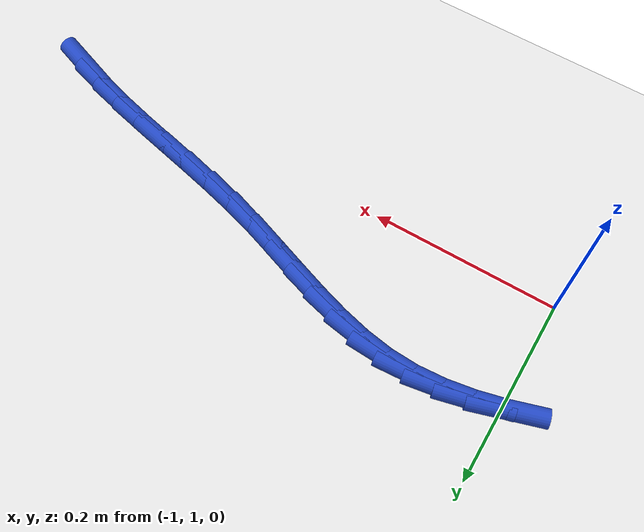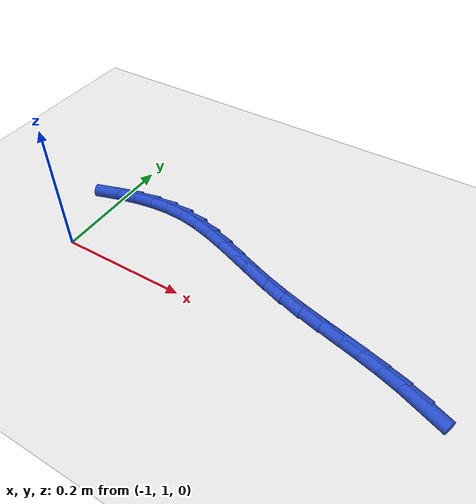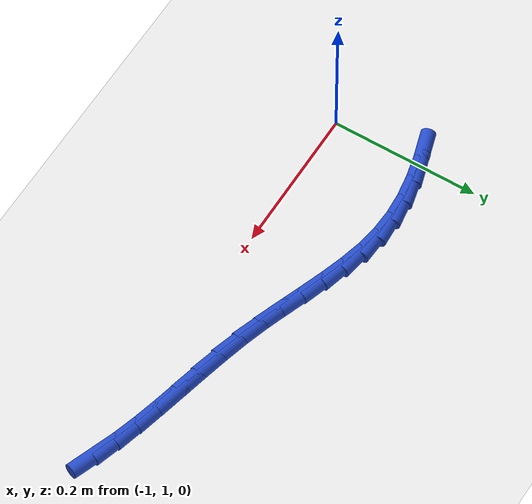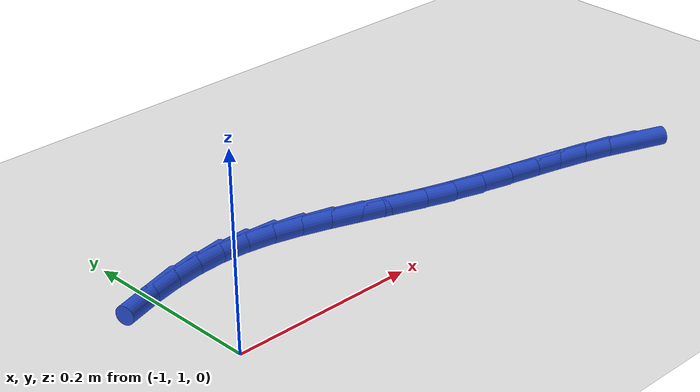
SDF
<sdf version="1.6">
 <world name="default">
  <model name="ground_plane">
   <static>1</static>
   <link name="link">
    <collision name="collision">
     <geometry><plane><normal>0 0 1</normal><size>100 100</size></plane></geometry>
     <surface><friction><ode><mu>100</mu><mu2>50</mu2></ode></friction></surface>
    </collision>
    <visual name="visual">
     <cast_shadows>0</cast_shadows>
     <geometry><plane><normal>0 0 1</normal><size>100 100</size></plane></geometry>
     <material>
      <script><uri>file://media/materials/scripts/gazebo.material</uri><name>Gazebo/WhiteGlow</name></script>
     </material>
    </visual>
   </link>
  </model>
  <model name="line">
   <link name="link_36">
    <pose>-0.4443935476967348 1.0065991091137647 0.01 0 1.57 -0.35108244564889207</pose>
    <collision name="collision">
     <geometry><cylinder><radius>0.01</radius><length>0.08</length></cylinder></geometry>
    </collision>
    <visual name="visual">
     <material>
      <script><name>Gazebo/Blue</name><uri>file://media/materials/scripts/gazebo.material</uri></script>
     </material>
     <geometry><cylinder><radius>0.01</radius><length>0.08</length></cylinder></geometry>
    </visual>
   </link>
   <link name="link_37">
    <pose>-0.47354317729272516 1.0172753258579377 0.01 0 1.57 -0.293710655829187</pose>
    <collision name="collision">
     <geometry><cylinder><radius>0.01</radius><length>0.08</length></cylinder></geometry>
    </collision>
    <visual name="visual">
     <material>
      <script><name>Gazebo/Blue</name><uri>file://media/materials/scripts/gazebo.material</uri></script>
     </material>
     <geometry><cylinder><radius>0.01</radius><length>0.08</length></cylinder></geometry>
    </visual>
   </link>
   <link name="link_38">
    <pose>-0.504290602658472 1.026575142178314 0.01 0 1.57 -0.2555441786680853</pose>
    <collision name="collision">
     <geometry><cylinder><radius>0.01</radius><length>0.08</length></cylinder></geometry>
    </collision>
    <visual name="visual">
     <material>
      <script><name>Gazebo/Blue</name><uri>file://media/materials/scripts/gazebo.material</uri></script>
     </material>
     <geometry><cylinder><radius>0.01</radius><length>0.08</length></cylinder></geometry>
    </visual>
   </link>
   <link name="link_39">
    <pose>-0.5362494569103372 1.0349245849400102 0.01 0 1.57 -0.23430316299109025</pose>
    <collision name="collision">
     <geometry><cylinder><radius>0.01</radius><length>0.08</length></cylinder></geometry>
    </collision>
    <visual name="visual">
     <material>
      <script><name>Gazebo/Blue</name><uri>file://media/materials/scripts/gazebo.material</uri></script>
     </material>
     <geometry><cylinder><radius>0.01</radius><length>0.08</length></cylinder></geometry>
    </visual>
   </link>
   <link name="link_40">
    <pose>-0.569033373164683 1.0427496810081427 0.01 0 1.57 -0.22851341701971878</pose>
    <collision name="collision">
     <geometry><cylinder><radius>0.01</radius><length>0.08</length></cylinder></geometry>
    </collision>
    <visual name="visual">
     <material>
      <script><name>Gazebo/Blue</name><uri>file://media/materials/scripts/gazebo.material</uri></script>
     </material>
     <geometry><cylinder><radius>0.01</radius><length>0.08</length></cylinder></geometry>
    </visual>
   </link>
   <link name="link_41">
    <pose>-0.6022559845378709 1.0504764572478278 0.01 0 1.57 -0.23749049462618627</pose>
    <collision name="collision">
     <geometry><cylinder><radius>0.01</radius><length>0.08</length></cylinder></geometry>
    </collision>
    <visual name="visual">
     <material>
      <script><name>Gazebo/Blue</name><uri>file://media/materials/scripts/gazebo.material</uri></script>
     </material>
     <geometry><cylinder><radius>0.01</radius><length>0.08</length></cylinder></geometry>
    </visual>
   </link>
   <link name="link_42">
    <pose>-0.6355309241462634 1.0585309405241823 0.01 0 1.57 -0.2612818216790445</pose>
    <collision name="collision">
     <geometry><cylinder><radius>0.01</radius><length>0.08</length></cylinder></geometry>
    </collision>
    <visual name="visual">
     <material>
      <script><name>Gazebo/Blue</name><uri>file://media/materials/scripts/gazebo.material</uri></script>
     </material>
     <geometry><cylinder><radius>0.01</radius><length>0.08</length></cylinder></geometry>
    </visual>
   </link>
   <link name="link_43">
    <pose>-0.6684718251062219 1.0673391577023223 0.01 0 1.57 -0.29998683237778345</pose>
    <collision name="collision">
     <geometry><cylinder><radius>0.01</radius><length>0.08</length></cylinder></geometry>
    </collision>
    <visual name="visual">
     <material>
      <script><name>Gazebo/Blue</name><uri>file://media/materials/scripts/gazebo.material</uri></script>
     </material>
     <geometry><cylinder><radius>0.01</radius><length>0.08</length></cylinder></geometry>
    </visual>
   </link>
   <link name="link_44">
    <pose>-0.7007013021845167 1.0773084382759213 0.01 0 1.57 -0.3371212285265319</pose>
    <collision name="collision">
     <geometry><cylinder><radius>0.01</radius><length>0.08</length></cylinder></geometry>
    </collision>
    <visual name="visual">
     <material>
      <script><name>Gazebo/Blue</name><uri>file://media/materials/scripts/gazebo.material</uri></script>
     </material>
     <geometry><cylinder><radius>0.01</radius><length>0.08</length></cylinder></geometry>
    </visual>
   </link>
   <link name="link_45">
    <pose>-0.7320980448267572 1.0883130333877695 0.01 0 1.57 -0.3528521597925134</pose>
    <collision name="collision">
     <geometry><cylinder><radius>0.01</radius><length>0.08</length></cylinder></geometry>
    </collision>
    <visual name="visual">
     <material>
      <script><name>Gazebo/Blue</name><uri>file://media/materials/scripts/gazebo.material</uri></script>
     </material>
     <geometry><cylinder><radius>0.01</radius><length>0.08</length></cylinder></geometry>
    </visual>
   </link>
   <link name="link_46">
    <pose>-0.7628277672682247 1.0996296860543815 0.01 0 1.57 -0.3451491324614072</pose>
    <collision name="collision">
     <geometry><cylinder><radius>0.01</radius><length>0.08</length></cylinder></geometry>
    </collision>
    <visual name="visual">
     <material>
      <script><name>Gazebo/Blue</name><uri>file://media/materials/scripts/gazebo.material</uri></script>
     </material>
     <geometry><cylinder><radius>0.01</radius><length>0.08</length></cylinder></geometry>
    </visual>
   </link>
   <link name="link_47">
    <pose>-0.7930713806897643 1.110503503354208 0.01 0 1.57 -0.3126027913945446</pose>
    <collision name="collision">
     <geometry><cylinder><radius>0.01</radius><length>0.08</length></cylinder></geometry>
    </collision>
    <visual name="visual">
     <material>
      <script><name>Gazebo/Blue</name><uri>file://media/materials/scripts/gazebo.material</uri></script>
     </material>
     <geometry><cylinder><radius>0.01</radius><length>0.08</length></cylinder></geometry>
    </visual>
   </link>
   <link name="link_48">
    <pose>-0.8230097962722206 1.1201795923657007 0.01 0 1.57 -0.2534817061256791</pose>
    <collision name="collision">
     <geometry><cylinder><radius>0.01</radius><length>0.08</length></cylinder></geometry>
    </collision>
    <visual name="visual">
     <material>
      <script><name>Gazebo/Blue</name><uri>file://media/materials/scripts/gazebo.material</uri></script>
     </material>
     <geometry><cylinder><radius>0.01</radius><length>0.08</length></cylinder></geometry>
    </visual>
   </link>
   <link name="link_49">
    <pose>-0.8528239251964391 1.1279030601673097 0.01 0 1.57 -0.16636973626836798</pose>
    <collision name="collision">
     <geometry><cylinder><radius>0.01</radius><length>0.08</length></cylinder></geometry>
    </collision>
    <visual name="visual">
     <material>
      <script><name>Gazebo/Blue</name><uri>file://media/materials/scripts/gazebo.material</uri></script>
     </material>
     <geometry><cylinder><radius>0.01</radius><length>0.08</length></cylinder></geometry>
    </visual>
   </link>
   <link name="link_50">
    <pose>-0.8826946786432639 1.1329190138374858 0.01 0 1.57 -0.0527953939663738</pose>
    <collision name="collision">
     <geometry><cylinder><radius>0.01</radius><length>0.08</length></cylinder></geometry>
    </collision>
    <visual name="visual">
     <material>
      <script><name>Gazebo/Blue</name><uri>file://media/materials/scripts/gazebo.material</uri></script>
     </material>
     <geometry><cylinder><radius>0.01</radius><length>0.08</length></cylinder></geometry>
    </visual>
   </link>
   <link name="link_51">
    <pose>-0.9127953869333578 1.1345096707728224 0.01 0 1.57 0.06277970974127081</pose>
    <collision name="collision">
     <geometry><cylinder><radius>0.01</radius><length>0.08</length></cylinder></geometry>
    </collision>
    <visual name="visual">
     <material>
      <script><name>Gazebo/Blue</name><uri>file://media/materials/scripts/gazebo.material</uri></script>
     </material>
     <geometry><cylinder><radius>0.01</radius><length>0.08</length></cylinder></geometry>
    </visual>
   </link>
   <link name="link_52">
    <pose>-0.9431680025323153 1.1326003777617155 0.01 0 1.57 0.16017281049282436</pose>
    <collision name="collision">
     <geometry><cylinder><radius>0.01</radius><length>0.08</length></cylinder></geometry>
    </collision>
    <visual name="visual">
     <material>
      <script><name>Gazebo/Blue</name><uri>file://media/materials/scripts/gazebo.material</uri></script>
     </material>
     <geometry><cylinder><radius>0.01</radius><length>0.08</length></cylinder></geometry>
    </visual>
   </link>
   <link name="link_53">
    <pose>-0.9737432990763977 1.1276607314043199 0.01 0 1.57 0.23905199526261023</pose>
    <collision name="collision">
     <geometry><cylinder><radius>0.01</radius><length>0.08</length></cylinder></geometry>
    </collision>
    <visual name="visual">
     <material>
      <script><name>Gazebo/Blue</name><uri>file://media/materials/scripts/gazebo.material</uri></script>
     </material>
     <geometry><cylinder><radius>0.01</radius><length>0.08</length></cylinder></geometry>
    </visual>
   </link>
   <link name="link_54">
    <pose>-1.0044485444715323 1.1201774897791539 0.01 0 1.57 0.3007158586468575</pose>
    <collision name="collision">
     <geometry><cylinder><radius>0.01</radius><length>0.08</length></cylinder></geometry>
    </collision>
    <visual name="visual">
     <material>
      <script><name>Gazebo/Blue</name><uri>file://media/materials/scripts/gazebo.material</uri></script>
     </material>
     <geometry><cylinder><radius>0.01</radius><length>0.08</length></cylinder></geometry>
    </visual>
   </link>
  </model>
 </world>
</sdf>
